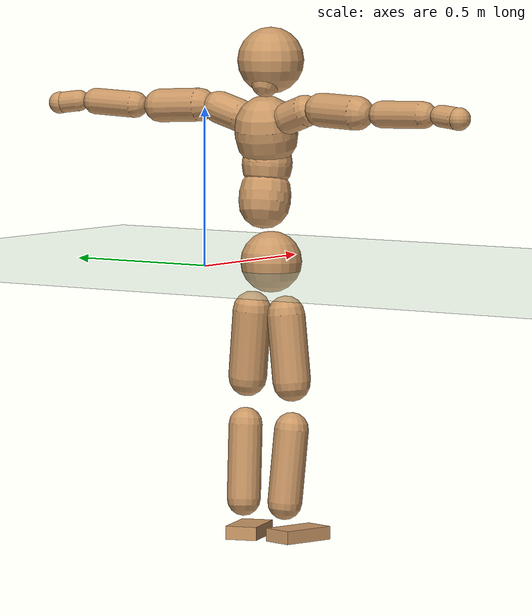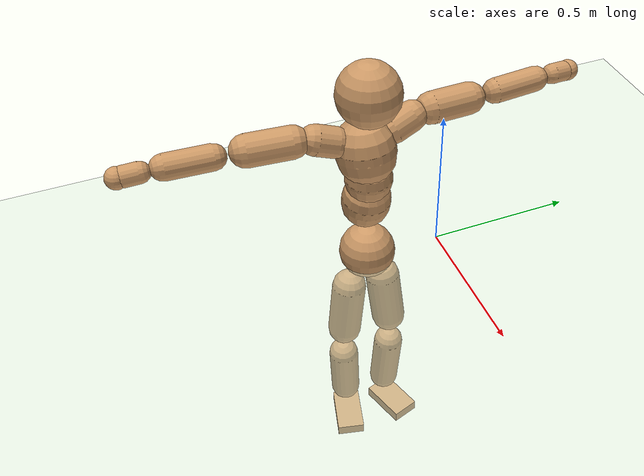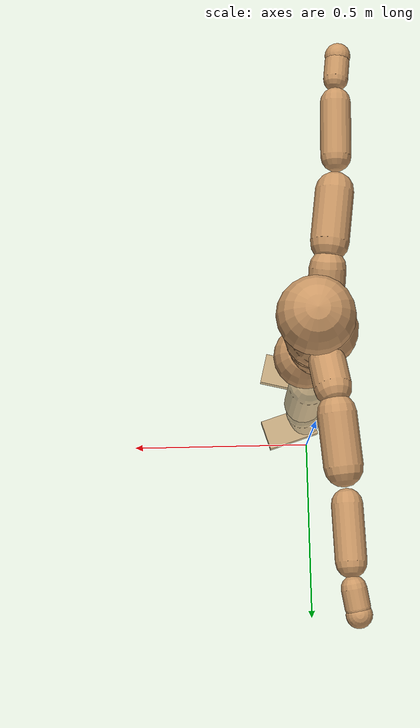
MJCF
<mujoco model="humanoid">
  <compiler coordinate="local"/>
  <default>
    <joint damping="0.0" armature="0.01" stiffness="0.0" limited="true"/>
    <geom conaffinity="1" condim="3" contype="7" margin="0.001" rgba="0.8 0.6 .4 1"/>
  </default>
  <asset>
    <texture type="skybox" builtin="gradient" rgb1=".4 .5 .6" rgb2="0 0 0" width="100" height="100"/>
    <texture builtin="flat" height="1278" mark="cross" markrgb="1 1 1" name="texgeom" random="0.01" rgb1="0.8 0.6 0.4" rgb2="0.8 0.6 0.4" type="cube" width="127"/>
    <texture builtin="checker" height="100" name="texplane" rgb1="0 0 0" rgb2="0.8 0.8 0.8" type="2d" width="100"/>
    <material name="MatPlane" reflectance="0.5" shininess="1" specular="1" texrepeat="60 60" texture="texplane"/>
    <material name="geom" texture="texgeom" texuniform="true"/>
  </asset>
  <worldbody>
    <light cutoff="100" diffuse="1 1 1" dir="-0 0 -1.3" directional="true" exponent="1" pos="0 0 1.3" specular=".1 .1 .1"/>
    <geom conaffinity="1" condim="3" name="floor" pos="0 0 0" rgba="0.8 0.9 0.8 1" size="100 100 .2" type="plane" material="MatPlane"/>
    <body name="Pelvis" pos="-0.0049 -0.2577 0.0271">
      <freejoint name="Pelvis"/>
      <geom type="sphere" contype="1" conaffinity="1" density="500" size="0.0960" pos="0.0000 0.0000 0.0000" name="Pelvis"/>
      <body name="L_Hip" pos="-0.0163 0.0555 -0.0826">
        <joint name="L_Hip_x" type="hinge" pos="0 0 0" axis="1 0 0" stiffness="800" damping="80" armature="0.02" range="-180.0000 180.0000"/>
        <joint name="L_Hip_y" type="hinge" pos="0 0 0" axis="0 1 0" stiffness="800" damping="80" armature="0.02" range="-180.0000 180.0000"/>
        <joint name="L_Hip_z" type="hinge" pos="0 0 0" axis="0 0 1" stiffness="800" damping="80" armature="0.02" range="-180.0000 180.0000"/>
        <geom type="capsule" contype="1" conaffinity="1" density="500" fromto="0.0025 0.0075 -0.0709 0.0101 0.0301 -0.2835" size="0.0601" name="L_Hip"/>
        <body name="L_Knee" pos="0.0127 0.0376 -0.3544">
          <joint name="L_Knee_x" type="hinge" pos="0 0 0" axis="1 0 0" stiffness="800" damping="80" armature="0.02" range="-180.0000 180.0000"/>
          <joint name="L_Knee_y" type="hinge" pos="0 0 0" axis="0 1 0" stiffness="800" damping="80" armature="0.02" range="-180.0000 180.0000"/>
          <joint name="L_Knee_z" type="hinge" pos="0 0 0" axis="0 0 1" stiffness="800" damping="80" armature="0.02" range="-180.0000 180.0000"/>
          <geom type="capsule" contype="1" conaffinity="1" density="500" fromto="-0.0072 -0.0029 -0.0776 -0.0289 -0.0115 -0.3104" size="0.0533" name="L_Knee"/>
          <body name="L_Ankle" pos="-0.0361 -0.0143 -0.388">
            <joint name="L_Ankle_x" type="hinge" pos="0 0 0" axis="1 0 0" stiffness="800" damping="80" armature="0.02" range="-180.0000 180.0000"/>
            <joint name="L_Ankle_y" type="hinge" pos="0 0 0" axis="0 1 0" stiffness="800" damping="80" armature="0.02" range="-180.0000 180.0000"/>
            <joint name="L_Ankle_z" type="hinge" pos="0 0 0" axis="0 0 1" stiffness="800" damping="80" armature="0.02" range="-180.0000 180.0000"/>
            <geom type="box" contype="1" conaffinity="1" density="500" pos="0.0589 0.0187 -0.0283" size="0.0861 0.0499 0.0211" quat="0.9882 0.0000 0.0000 0.1532" name="L_Ankle"/>
            <body name="L_Toe" pos="0.1177 0.0374 -0.0566">
              <joint name="L_Toe_x" type="hinge" pos="0 0 0" axis="1 0 0" stiffness="500" damping="50" armature="0.02" range="-180.0000 180.0000"/>
              <joint name="L_Toe_y" type="hinge" pos="0 0 0" axis="0 1 0" stiffness="500" damping="50" armature="0.02" range="-180.0000 180.0000"/>
              <joint name="L_Toe_z" type="hinge" pos="0 0 0" axis="0 0 1" stiffness="500" damping="50" armature="0.02" range="-180.0000 180.0000"/>
              <geom type="box" contype="1" conaffinity="1" density="500" pos="0.0000 0.0000 0.0272" size="0.0011 0.0025 0.001" quat="0.9874 0.0000 0.0000 0.1583" name="L_Toe"/>
            </body>
          </body>
        </body>
      </body>
      <body name="R_Hip" pos="-0.0111 -0.0568 -0.0913">
        <joint name="R_Hip_x" type="hinge" pos="0 0 0" axis="1 0 0" stiffness="800" damping="80" armature="0.02" range="-180.0000 180.0000"/>
        <joint name="R_Hip_y" type="hinge" pos="0 0 0" axis="0 1 0" stiffness="800" damping="80" armature="0.02" range="-180.0000 180.0000"/>
        <joint name="R_Hip_z" type="hinge" pos="0 0 0" axis="0 0 1" stiffness="800" damping="80" armature="0.02" range="-180.0000 180.0000"/>
        <geom type="capsule" contype="1" conaffinity="1" density="500" fromto="-0.0001 -0.0074 -0.0701 -0.0003 -0.0295 -0.2805" size="0.0595" name="R_Hip"/>
        <body name="R_Knee" pos="-0.0003 -0.0369 -0.3506">
          <joint name="R_Knee_x" type="hinge" pos="0 0 0" axis="1 0 0" stiffness="800" damping="80" armature="0.02" range="-180.0000 180.0000"/>
          <joint name="R_Knee_y" type="hinge" pos="0 0 0" axis="0 1 0" stiffness="800" damping="80" armature="0.02" range="-180.0000 180.0000"/>
          <joint name="R_Knee_z" type="hinge" pos="0 0 0" axis="0 0 1" stiffness="800" damping="80" armature="0.02" range="-180.0000 180.0000"/>
          <geom type="capsule" contype="1" conaffinity="1" density="500" fromto="-0.0069 0.0036 -0.0760 -0.0274 0.0145 -0.3041" size="0.0537" name="R_Knee"/>
          <body name="R_Ankle" pos="-0.0343 0.0181 -0.3802">
            <joint name="R_Ankle_x" type="hinge" pos="0 0 0" axis="1 0 0" stiffness="800" damping="80" armature="0.02" range="-180.0000 180.0000"/>
            <joint name="R_Ankle_y" type="hinge" pos="0 0 0" axis="0 1 0" stiffness="800" damping="80" armature="0.02" range="-180.0000 180.0000"/>
            <joint name="R_Ankle_z" type="hinge" pos="0 0 0" axis="0 0 1" stiffness="800" damping="80" armature="0.02" range="-180.0000 180.0000"/>
            <geom type="box" contype="1" conaffinity="1" density="500" pos="0.0635 -0.0154 -0.0277" size="0.0885 0.05 0.0207" quat="0.9929 0.0000 0.0000 -0.1190" name="R_Ankle"/>
            <body name="R_Toe" pos="0.127 -0.0309 -0.0553">
              <joint name="R_Toe_x" type="hinge" pos="0 0 0" axis="1 0 0" stiffness="500" damping="50" armature="0.02" range="-180.0000 180.0000"/>
              <joint name="R_Toe_y" type="hinge" pos="0 0 0" axis="0 1 0" stiffness="500" damping="50" armature="0.02" range="-180.0000 180.0000"/>
              <joint name="R_Toe_z" type="hinge" pos="0 0 0" axis="0 0 1" stiffness="500" damping="50" armature="0.02" range="-180.0000 180.0000"/>
              <geom type="box" contype="1" conaffinity="1" density="500" pos="0.0000 0.0000 0.0289" size="0.001 0.0025 0.0011" quat="0.9939 0.0000 0.0000 -0.1100" name="R_Toe"/>
            </body>
          </body>
        </body>
      </body>
      <body name="Torso" pos="-0.0382 0.004 0.1272">
        <joint name="Torso_x" type="hinge" pos="0 0 0" axis="1 0 0" stiffness="1000" damping="100" armature="0.02" range="-180.0000 180.0000"/>
        <joint name="Torso_y" type="hinge" pos="0 0 0" axis="0 1 0" stiffness="1000" damping="100" armature="0.02" range="-180.0000 180.0000"/>
        <joint name="Torso_z" type="hinge" pos="0 0 0" axis="0 0 1" stiffness="1000" damping="100" armature="0.02" range="-180.0000 180.0000"/>
        <geom type="capsule" contype="1" conaffinity="1" density="500" fromto="0.0169 0.0038 0.0886 0.0113 0.0025 0.0591" size="0.0817" name="Torso"/>
        <body name="Spine" pos="0.0282 0.0063 0.1477">
          <joint name="Spine_x" type="hinge" pos="0 0 0" axis="1 0 0" stiffness="1000" damping="100" armature="0.02" range="-180.0000 180.0000"/>
          <joint name="Spine_y" type="hinge" pos="0 0 0" axis="0 1 0" stiffness="1000" damping="100" armature="0.02" range="-180.0000 180.0000"/>
          <joint name="Spine_z" type="hinge" pos="0 0 0" axis="0 0 1" stiffness="1000" damping="100" armature="0.02" range="-180.0000 180.0000"/>
          <geom type="capsule" contype="1" conaffinity="1" density="500" fromto="0.0024 -0.0008 0.0361 0.0016 -0.0006 0.0240" size="0.079" name="Spine"/>
          <body name="Chest" pos="0.0041 -0.0014 0.0601">
            <joint name="Chest_x" type="hinge" pos="0 0 0" axis="1 0 0" stiffness="1000" damping="100" armature="0.02" range="-180.0000 180.0000"/>
            <joint name="Chest_y" type="hinge" pos="0 0 0" axis="0 1 0" stiffness="1000" damping="100" armature="0.02" range="-180.0000 180.0000"/>
            <joint name="Chest_z" type="hinge" pos="0 0 0" axis="0 0 1" stiffness="1000" damping="100" armature="0.02" range="-180.0000 180.0000"/>
            <geom type="capsule" contype="1" conaffinity="1" density="500" fromto="-0.0172 -0.0046 0.0853 -0.0114 -0.0031 0.0569" size="0.0984" name="Chest"/>
            <body name="Neck" pos="-0.0372 -0.0127 0.2063">
              <joint name="Neck_x" type="hinge" pos="0 0 0" axis="1 0 0" stiffness="500" damping="50" armature="0.02" range="-180.0000 180.0000"/>
              <joint name="Neck_y" type="hinge" pos="0 0 0" axis="0 1 0" stiffness="500" damping="50" armature="0.02" range="-180.0000 180.0000"/>
              <joint name="Neck_z" type="hinge" pos="0 0 0" axis="0 0 1" stiffness="500" damping="50" armature="0.02" range="-180.0000 180.0000"/>
              <geom type="capsule" contype="1" conaffinity="1" density="500" fromto="0.0096 0.0019 0.0170 0.0384 0.0075 0.0682" size="0.0447" name="Neck"/>
              <body name="Head" pos="0.048 0.0093 0.0852">
                <joint name="Head_x" type="hinge" pos="0 0 0" axis="1 0 0" stiffness="500" damping="50" armature="0.02" range="-180.0000 180.0000"/>
                <joint name="Head_y" type="hinge" pos="0 0 0" axis="0 1 0" stiffness="500" damping="50" armature="0.02" range="-180.0000 180.0000"/>
                <joint name="Head_z" type="hinge" pos="0 0 0" axis="0 0 1" stiffness="500" damping="50" armature="0.02" range="-180.0000 180.0000"/>
                <geom type="sphere" contype="1" conaffinity="1" density="500" size="0.1036" pos="0.0000 0.0000 0.0000" name="Head"/>
              </body>
            </body>
            <body name="L_Thorax" pos="-0.0219 0.0663 0.1113">
              <joint name="L_Thorax_x" type="hinge" pos="0 0 0" axis="1 0 0" stiffness="500" damping="50" armature="0.02" range="-180.0000 180.0000"/>
              <joint name="L_Thorax_y" type="hinge" pos="0 0 0" axis="0 1 0" stiffness="500" damping="50" armature="0.02" range="-180.0000 180.0000"/>
              <joint name="L_Thorax_z" type="hinge" pos="0 0 0" axis="0 0 1" stiffness="500" damping="50" armature="0.02" range="-180.0000 180.0000"/>
              <geom type="capsule" contype="1" conaffinity="1" density="500" fromto="-0.0036 0.0234 0.0080 -0.0142 0.0937 0.0319" size="0.0506" name="L_Thorax"/>
              <body name="L_Shoulder" pos="-0.0178 0.1171 0.0398">
                <joint name="L_Shoulder_x" type="hinge" pos="0 0 0" axis="1 0 0" stiffness="500" damping="50" armature="0.02" range="-720.0000 720.0000"/>
                <joint name="L_Shoulder_y" type="hinge" pos="0 0 0" axis="0 1 0" stiffness="500" damping="50" armature="0.02" range="-720.0000 720.0000"/>
                <joint name="L_Shoulder_z" type="hinge" pos="0 0 0" axis="0 0 1" stiffness="500" damping="50" armature="0.02" range="-720.0000 720.0000"/>
                <geom type="capsule" contype="1" conaffinity="1" density="500" fromto="-0.0042 0.0467 -0.0021 -0.0169 0.1869 -0.0085" size="0.0528" name="L_Shoulder"/>
                <body name="L_Elbow" pos="-0.0211 0.2337 -0.0106">
                  <joint name="L_Elbow_x" type="hinge" pos="0 0 0" axis="1 0 0" stiffness="500" damping="50" armature="0.02" range="-720.0000 720.0000"/>
                  <joint name="L_Elbow_y" type="hinge" pos="0 0 0" axis="0 1 0" stiffness="500" damping="50" armature="0.02" range="-720.0000 720.0000"/>
                  <joint name="L_Elbow_z" type="hinge" pos="0 0 0" axis="0 0 1" stiffness="500" damping="50" armature="0.02" range="-720.0000 720.0000"/>
                  <geom type="capsule" contype="1" conaffinity="1" density="500" fromto="-0.0016 0.0497 0.0021 -0.0064 0.1989 0.0086" size="0.0416" name="L_Elbow"/>
                  <body name="L_Wrist" pos="-0.008 0.2487 0.0107">
                    <joint name="L_Wrist_x" type="hinge" pos="0 0 0" axis="1 0 0" stiffness="300" damping="30" armature="0.02" range="-180.0000 180.0000"/>
                    <joint name="L_Wrist_y" type="hinge" pos="0 0 0" axis="0 1 0" stiffness="300" damping="30" armature="0.02" range="-180.0000 180.0000"/>
                    <joint name="L_Wrist_z" type="hinge" pos="0 0 0" axis="0 0 1" stiffness="300" damping="30" armature="0.02" range="-180.0000 180.0000"/>
                    <geom type="capsule" contype="1" conaffinity="1" density="500" fromto="-0.0030 0.0169 -0.0021 -0.0120 0.0676 -0.0083" size="0.0336" name="L_Wrist"/>
                    <body name="L_Hand" pos="-0.015 0.0845 -0.0103">
                      <joint name="L_Hand_x" type="hinge" pos="0 0 0" axis="1 0 0" stiffness="300" damping="30" armature="0.02" range="-180.0000 180.0000"/>
                      <joint name="L_Hand_y" type="hinge" pos="0 0 0" axis="0 1 0" stiffness="300" damping="30" armature="0.02" range="-180.0000 180.0000"/>
                      <joint name="L_Hand_z" type="hinge" pos="0 0 0" axis="0 0 1" stiffness="300" damping="30" armature="0.02" range="-180.0000 180.0000"/>
                      <geom type="sphere" contype="1" conaffinity="1" density="500" size="0.0348" pos="0.0000 0.0000 0.0000" name="L_Hand"/>
                    </body>
                  </body>
                </body>
              </body>
            </body>
            <body name="R_Thorax" pos="-0.0267 -0.0767 0.1089">
              <joint name="R_Thorax_x" type="hinge" pos="0 0 0" axis="1 0 0" stiffness="500" damping="50" armature="0.02" range="-180.0000 180.0000"/>
              <joint name="R_Thorax_y" type="hinge" pos="0 0 0" axis="0 1 0" stiffness="500" damping="50" armature="0.02" range="-180.0000 180.0000"/>
              <joint name="R_Thorax_z" type="hinge" pos="0 0 0" axis="0 0 1" stiffness="500" damping="50" armature="0.02" range="-180.0000 180.0000"/>
              <geom type="capsule" contype="1" conaffinity="1" density="500" fromto="-0.0016 -0.0213 0.0079 -0.0064 -0.0854 0.0315" size="0.0503" name="R_Thorax"/>
              <body name="R_Shoulder" pos="-0.008 -0.1067 0.0393">
                <joint name="R_Shoulder_x" type="hinge" pos="0 0 0" axis="1 0 0" stiffness="500" damping="50" armature="0.02" range="-720.0000 720.0000"/>
                <joint name="R_Shoulder_y" type="hinge" pos="0 0 0" axis="0 1 0" stiffness="500" damping="50" armature="0.02" range="-720.0000 720.0000"/>
                <joint name="R_Shoulder_z" type="hinge" pos="0 0 0" axis="0 0 1" stiffness="500" damping="50" armature="0.02" range="-720.0000 720.0000"/>
                <geom type="capsule" contype="1" conaffinity="1" density="500" fromto="-0.0059 -0.0473 -0.0015 -0.0238 -0.1892 -0.0061" size="0.0528" name="R_Shoulder"/>
                <body name="R_Elbow" pos="-0.0297 -0.2364 -0.0076">
                  <joint name="R_Elbow_x" type="hinge" pos="0 0 0" axis="1 0 0" stiffness="500" damping="50" armature="0.02" range="-720.0000 720.0000"/>
                  <joint name="R_Elbow_y" type="hinge" pos="0 0 0" axis="0 1 0" stiffness="500" damping="50" armature="0.02" range="-720.0000 720.0000"/>
                  <joint name="R_Elbow_z" type="hinge" pos="0 0 0" axis="0 0 1" stiffness="500" damping="50" armature="0.02" range="-720.0000 720.0000"/>
                  <geom type="capsule" contype="1" conaffinity="1" density="500" fromto="-0.0012 -0.0499 0.0011 -0.0047 -0.1998 0.0044" size="0.0417" name="R_Elbow"/>
                  <body name="R_Wrist" pos="-0.0059 -0.2497 0.0054">
                    <joint name="R_Wrist_x" type="hinge" pos="0 0 0" axis="1 0 0" stiffness="300" damping="30" armature="0.02" range="-180.0000 180.0000"/>
                    <joint name="R_Wrist_y" type="hinge" pos="0 0 0" axis="0 1 0" stiffness="300" damping="30" armature="0.02" range="-180.0000 180.0000"/>
                    <joint name="R_Wrist_z" type="hinge" pos="0 0 0" axis="0 0 1" stiffness="300" damping="30" armature="0.02" range="-180.0000 180.0000"/>
                    <geom type="capsule" contype="1" conaffinity="1" density="500" fromto="-0.0019 -0.0172 -0.0017 -0.0077 -0.0686 -0.0066" size="0.0338" name="R_Wrist"/>
                    <body name="R_Hand" pos="-0.0096 -0.0858 -0.0083">
                      <joint name="R_Hand_x" type="hinge" pos="0 0 0" axis="1 0 0" stiffness="300" damping="30" armature="0.02" range="-180.0000 180.0000"/>
                      <joint name="R_Hand_y" type="hinge" pos="0 0 0" axis="0 1 0" stiffness="300" damping="30" armature="0.02" range="-180.0000 180.0000"/>
                      <joint name="R_Hand_z" type="hinge" pos="0 0 0" axis="0 0 1" stiffness="300" damping="30" armature="0.02" range="-180.0000 180.0000"/>
                      <geom type="sphere" contype="1" conaffinity="1" density="500" size="0.0350" pos="0.0000 0.0000 0.0000" name="R_Hand"/>
                    </body>
                  </body>
                </body>
              </body>
            </body>
          </body>
        </body>
      </body>
    </body>
  </worldbody>
  <actuator>
    <motor name="L_Hip_x" joint="L_Hip_x" gear="500"/>
    <motor name="L_Hip_y" joint="L_Hip_y" gear="500"/>
    <motor name="L_Hip_z" joint="L_Hip_z" gear="500"/>
    <motor name="L_Knee_x" joint="L_Knee_x" gear="500"/>
    <motor name="L_Knee_y" joint="L_Knee_y" gear="500"/>
    <motor name="L_Knee_z" joint="L_Knee_z" gear="500"/>
    <motor name="L_Ankle_x" joint="L_Ankle_x" gear="500"/>
    <motor name="L_Ankle_y" joint="L_Ankle_y" gear="500"/>
    <motor name="L_Ankle_z" joint="L_Ankle_z" gear="500"/>
    <motor name="L_Toe_x" joint="L_Toe_x" gear="500"/>
    <motor name="L_Toe_y" joint="L_Toe_y" gear="500"/>
    <motor name="L_Toe_z" joint="L_Toe_z" gear="500"/>
    <motor name="R_Hip_x" joint="R_Hip_x" gear="500"/>
    <motor name="R_Hip_y" joint="R_Hip_y" gear="500"/>
    <motor name="R_Hip_z" joint="R_Hip_z" gear="500"/>
    <motor name="R_Knee_x" joint="R_Knee_x" gear="500"/>
    <motor name="R_Knee_y" joint="R_Knee_y" gear="500"/>
    <motor name="R_Knee_z" joint="R_Knee_z" gear="500"/>
    <motor name="R_Ankle_x" joint="R_Ankle_x" gear="500"/>
    <motor name="R_Ankle_y" joint="R_Ankle_y" gear="500"/>
    <motor name="R_Ankle_z" joint="R_Ankle_z" gear="500"/>
    <motor name="R_Toe_x" joint="R_Toe_x" gear="500"/>
    <motor name="R_Toe_y" joint="R_Toe_y" gear="500"/>
    <motor name="R_Toe_z" joint="R_Toe_z" gear="500"/>
    <motor name="Torso_x" joint="Torso_x" gear="500"/>
    <motor name="Torso_y" joint="Torso_y" gear="500"/>
    <motor name="Torso_z" joint="Torso_z" gear="500"/>
    <motor name="Spine_x" joint="Spine_x" gear="500"/>
    <motor name="Spine_y" joint="Spine_y" gear="500"/>
    <motor name="Spine_z" joint="Spine_z" gear="500"/>
    <motor name="Chest_x" joint="Chest_x" gear="500"/>
    <motor name="Chest_y" joint="Chest_y" gear="500"/>
    <motor name="Chest_z" joint="Chest_z" gear="500"/>
    <motor name="Neck_x" joint="Neck_x" gear="500"/>
    <motor name="Neck_y" joint="Neck_y" gear="500"/>
    <motor name="Neck_z" joint="Neck_z" gear="500"/>
    <motor name="Head_x" joint="Head_x" gear="500"/>
    <motor name="Head_y" joint="Head_y" gear="500"/>
    <motor name="Head_z" joint="Head_z" gear="500"/>
    <motor name="L_Thorax_x" joint="L_Thorax_x" gear="500"/>
    <motor name="L_Thorax_y" joint="L_Thorax_y" gear="500"/>
    <motor name="L_Thorax_z" joint="L_Thorax_z" gear="500"/>
    <motor name="L_Shoulder_x" joint="L_Shoulder_x" gear="500"/>
    <motor name="L_Shoulder_y" joint="L_Shoulder_y" gear="500"/>
    <motor name="L_Shoulder_z" joint="L_Shoulder_z" gear="500"/>
    <motor name="L_Elbow_x" joint="L_Elbow_x" gear="500"/>
    <motor name="L_Elbow_y" joint="L_Elbow_y" gear="500"/>
    <motor name="L_Elbow_z" joint="L_Elbow_z" gear="500"/>
    <motor name="L_Wrist_x" joint="L_Wrist_x" gear="500"/>
    <motor name="L_Wrist_y" joint="L_Wrist_y" gear="500"/>
    <motor name="L_Wrist_z" joint="L_Wrist_z" gear="500"/>
    <motor name="L_Hand_x" joint="L_Hand_x" gear="500"/>
    <motor name="L_Hand_y" joint="L_Hand_y" gear="500"/>
    <motor name="L_Hand_z" joint="L_Hand_z" gear="500"/>
    <motor name="R_Thorax_x" joint="R_Thorax_x" gear="500"/>
    <motor name="R_Thorax_y" joint="R_Thorax_y" gear="500"/>
    <motor name="R_Thorax_z" joint="R_Thorax_z" gear="500"/>
    <motor name="R_Shoulder_x" joint="R_Shoulder_x" gear="500"/>
    <motor name="R_Shoulder_y" joint="R_Shoulder_y" gear="500"/>
    <motor name="R_Shoulder_z" joint="R_Shoulder_z" gear="500"/>
    <motor name="R_Elbow_x" joint="R_Elbow_x" gear="500"/>
    <motor name="R_Elbow_y" joint="R_Elbow_y" gear="500"/>
    <motor name="R_Elbow_z" joint="R_Elbow_z" gear="500"/>
    <motor name="R_Wrist_x" joint="R_Wrist_x" gear="500"/>
    <motor name="R_Wrist_y" joint="R_Wrist_y" gear="500"/>
    <motor name="R_Wrist_z" joint="R_Wrist_z" gear="500"/>
    <motor name="R_Hand_x" joint="R_Hand_x" gear="500"/>
    <motor name="R_Hand_y" joint="R_Hand_y" gear="500"/>
    <motor name="R_Hand_z" joint="R_Hand_z" gear="500"/>
  </actuator>
  <contact>
    <exclude body1="Torso" body2="Chest"/>
    <exclude body1="Head" body2="Chest"/>
    <exclude body1="R_Knee" body2="R_Toe"/>
    <exclude body1="R_Knee" body2="L_Ankle"/>
    <exclude body1="R_Knee" body2="L_Toe"/>
    <exclude body1="L_Knee" body2="L_Toe"/>
    <exclude body1="L_Knee" body2="R_Ankle"/>
    <exclude body1="L_Knee" body2="R_Toe"/>
    <exclude body1="L_Shoulder" body2="Chest"/>
    <exclude body1="R_Shoulder" body2="Chest"/>
  </contact>
  <sensor/>
  <size njmax="700" nconmax="700"/>
</mujoco>
